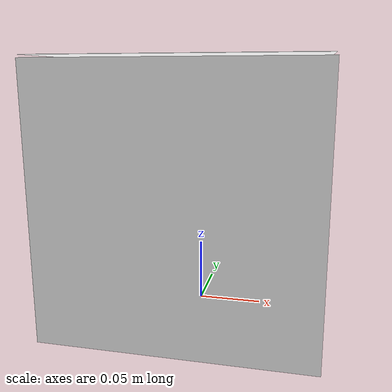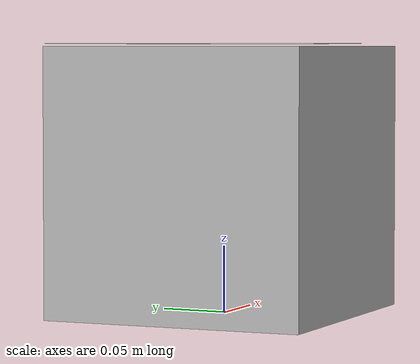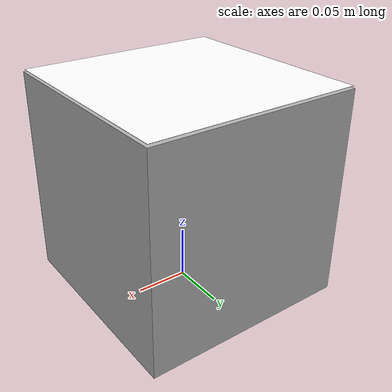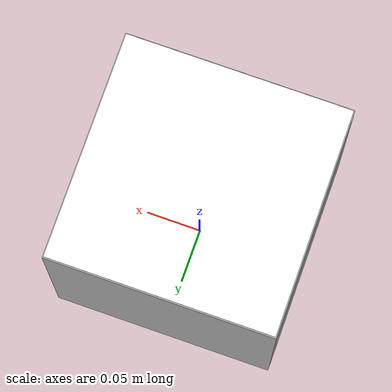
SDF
<sdf version="1.9">
  <model name="aruco_cube">
    <static>false</static>

    <!-- Place cube on ground: center at z=0.1 for a 0.2m cube -->
    <pose>0 0 0.1 0 0 0</pose>

    <link name="cube_link">

      <collision name="cube_collision">
        <geometry>
          <box>
            <size>0.2 0.2 0.2</size>
          </box>
        </geometry>
      </collision>

      <visual name="cube_visual">
        <geometry>
          <box>
            <size>0.2 0.2 0.2</size>
          </box>
        </geometry>
        <material>
          <ambient>0.7 0.7 0.7 1</ambient>
          <diffuse>0.7 0.7 0.7 1</diffuse>
        </material>
      </visual>

      <visual name="aruco_marker_visual">
        <!-- lift a bit more to avoid z-fighting -->
        <pose>0 0 0.102 0 0 0</pose>

        <geometry>
          <plane>
            <normal>0 0 1</normal>
            <size>0.198 0.198</size>
          </plane>
        </geometry>

        <cast_shadows>false</cast_shadows>

       <material>
  <ambient>1 1 1 1</ambient>
  <diffuse>1 1 1 1</diffuse>
  <emissive>0 0 0 1</emissive>

  <pbr>
    <metal>
      <albedo>1 1 1</albedo>
      <roughness>1.0</roughness>
      <metalness>0.0</metalness>
      <albedo_map>model://aruco_cube/materials/textures/aruco.png</albedo_map>
    </metal>
  </pbr>
</material>

      </visual>

      <inertial>
        <mass>0.5</mass>
        <inertia>
          <ixx>0.003333</ixx>
          <iyy>0.003333</iyy>
          <izz>0.003333</izz>
          <ixy>0</ixy>
          <ixz>0</ixz>
          <iyz>0</iyz>
        </inertia>
      </inertial>

    </link>
  </model>
</sdf>
